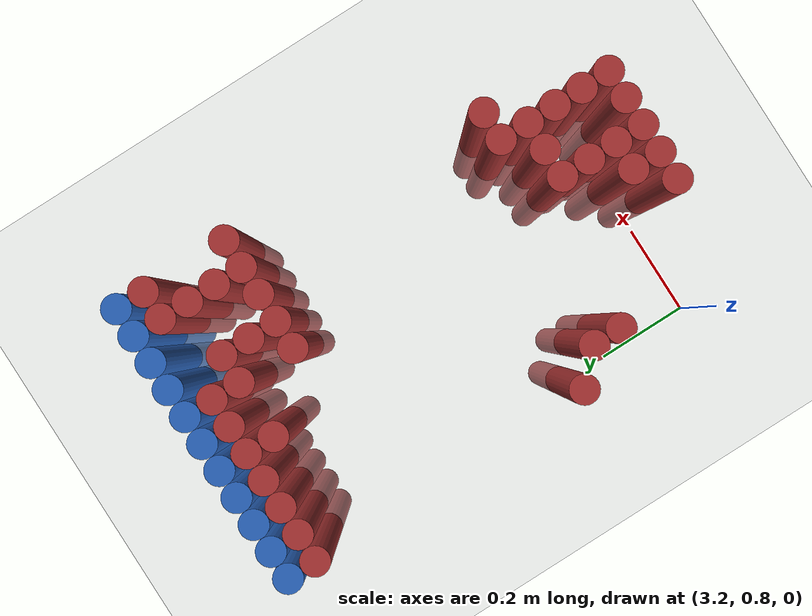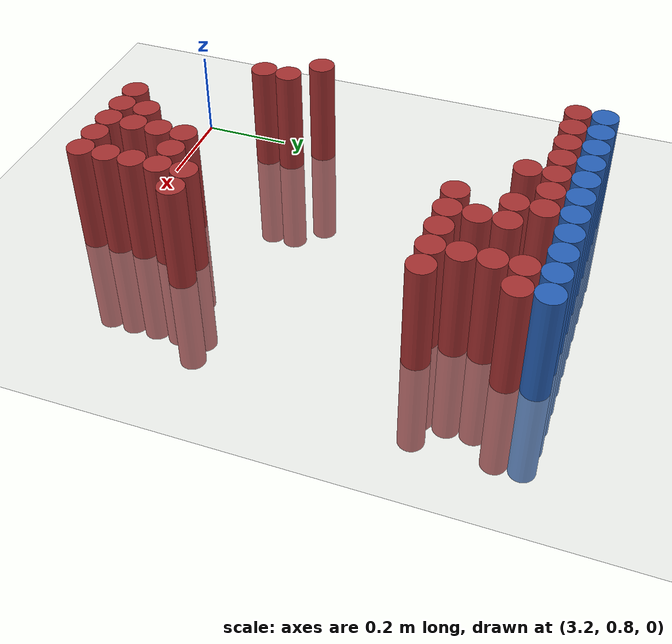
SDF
<sdf version="1.6">
 <world name="default">
  <model name="ground_plane">
   <static>1</static>
   <link name="link">
    <collision name="collision">
     <geometry><plane><normal>0 0 1</normal><size>100 100</size></plane></geometry>
     <surface><friction><ode><mu>100</mu><mu2>50</mu2></ode></friction></surface>
    </collision>
    <visual name="visual">
     <cast_shadows>0</cast_shadows>
     <geometry><plane><normal>0 0 1</normal><size>100 100</size></plane></geometry>
     <material>
      <script><uri>file://media/materials/scripts/gazebo.material</uri><name>Gazebo/Grey</name></script>
     </material>
    </visual>
   </link>
  </model>
  <model name="unit_cylinder_114">
   <static>1</static>
   <pose>3.210000 1.770000 0.000000 0.000000 0.000000 0.000000</pose>
   <link name="link">
    <inertial>
     <mass>1</mass>
     <inertia><ixx>0.145833</ixx><ixy>0</ixy><ixz>0</ixz><iyy>0.145833</iyy><iyz>0</iyz><izz>0.125</izz></inertia>
    </inertial>
    <collision name="collision">
     <geometry><cylinder><radius>0.030000</radius><length>0.5</length></cylinder></geometry>
    </collision>
    <visual name="visual">
     <geometry><cylinder><radius>0.030000</radius><length>0.5</length></cylinder></geometry>
     <material>
      <ambient>0.152000 0.379000 0.720000 1</ambient>
      <diffuse>0.152000 0.379000 0.720000 1</diffuse>
     </material>
     <material>
      <script><name>Gazebo/Grey</name><uri>file://media/materials/scripts/gazebo.material</uri></script>
     </material>
    </visual>
   </link>
  </model>
  <model name="unit_cylinder_115">
   <static>1</static>
   <pose>3.270000 1.770000 0.000000 0.000000 0.000000 0.000000</pose>
   <link name="link">
    <inertial>
     <mass>1</mass>
     <inertia><ixx>0.145833</ixx><ixy>0</ixy><ixz>0</ixz><iyy>0.145833</iyy><iyz>0</iyz><izz>0.125</izz></inertia>
    </inertial>
    <collision name="collision">
     <geometry><cylinder><radius>0.030000</radius><length>0.5</length></cylinder></geometry>
    </collision>
    <visual name="visual">
     <geometry><cylinder><radius>0.030000</radius><length>0.5</length></cylinder></geometry>
     <material>
      <ambient>0.152000 0.379000 0.720000 1</ambient>
      <diffuse>0.152000 0.379000 0.720000 1</diffuse>
     </material>
     <material>
      <script><name>Gazebo/Grey</name><uri>file://media/materials/scripts/gazebo.material</uri></script>
     </material>
    </visual>
   </link>
  </model>
  <model name="unit_cylinder_116">
   <static>1</static>
   <pose>3.330000 1.770000 0.000000 0.000000 0.000000 0.000000</pose>
   <link name="link">
    <inertial>
     <mass>1</mass>
     <inertia><ixx>0.145833</ixx><ixy>0</ixy><ixz>0</ixz><iyy>0.145833</iyy><iyz>0</iyz><izz>0.125</izz></inertia>
    </inertial>
    <collision name="collision">
     <geometry><cylinder><radius>0.030000</radius><length>0.5</length></cylinder></geometry>
    </collision>
    <visual name="visual">
     <geometry><cylinder><radius>0.030000</radius><length>0.5</length></cylinder></geometry>
     <material>
      <ambient>0.152000 0.379000 0.720000 1</ambient>
      <diffuse>0.152000 0.379000 0.720000 1</diffuse>
     </material>
     <material>
      <script><name>Gazebo/Grey</name><uri>file://media/materials/scripts/gazebo.material</uri></script>
     </material>
    </visual>
   </link>
  </model>
  <model name="unit_cylinder_117">
   <static>1</static>
   <pose>3.390000 1.770000 0.000000 0.000000 0.000000 0.000000</pose>
   <link name="link">
    <inertial>
     <mass>1</mass>
     <inertia><ixx>0.145833</ixx><ixy>0</ixy><ixz>0</ixz><iyy>0.145833</iyy><iyz>0</iyz><izz>0.125</izz></inertia>
    </inertial>
    <collision name="collision">
     <geometry><cylinder><radius>0.030000</radius><length>0.5</length></cylinder></geometry>
    </collision>
    <visual name="visual">
     <geometry><cylinder><radius>0.030000</radius><length>0.5</length></cylinder></geometry>
     <material>
      <ambient>0.152000 0.379000 0.720000 1</ambient>
      <diffuse>0.152000 0.379000 0.720000 1</diffuse>
     </material>
     <material>
      <script><name>Gazebo/Grey</name><uri>file://media/materials/scripts/gazebo.material</uri></script>
     </material>
    </visual>
   </link>
  </model>
  <model name="unit_cylinder_118">
   <static>1</static>
   <pose>3.450000 1.770000 0.000000 0.000000 0.000000 0.000000</pose>
   <link name="link">
    <inertial>
     <mass>1</mass>
     <inertia><ixx>0.145833</ixx><ixy>0</ixy><ixz>0</ixz><iyy>0.145833</iyy><iyz>0</iyz><izz>0.125</izz></inertia>
    </inertial>
    <collision name="collision">
     <geometry><cylinder><radius>0.030000</radius><length>0.5</length></cylinder></geometry>
    </collision>
    <visual name="visual">
     <geometry><cylinder><radius>0.030000</radius><length>0.5</length></cylinder></geometry>
     <material>
      <ambient>0.152000 0.379000 0.720000 1</ambient>
      <diffuse>0.152000 0.379000 0.720000 1</diffuse>
     </material>
     <material>
      <script><name>Gazebo/Grey</name><uri>file://media/materials/scripts/gazebo.material</uri></script>
     </material>
    </visual>
   </link>
  </model>
  <model name="unit_cylinder_119">
   <static>1</static>
   <pose>3.510000 1.770000 0.000000 0.000000 0.000000 0.000000</pose>
   <link name="link">
    <inertial>
     <mass>1</mass>
     <inertia><ixx>0.145833</ixx><ixy>0</ixy><ixz>0</ixz><iyy>0.145833</iyy><iyz>0</iyz><izz>0.125</izz></inertia>
    </inertial>
    <collision name="collision">
     <geometry><cylinder><radius>0.030000</radius><length>0.5</length></cylinder></geometry>
    </collision>
    <visual name="visual">
     <geometry><cylinder><radius>0.030000</radius><length>0.5</length></cylinder></geometry>
     <material>
      <ambient>0.152000 0.379000 0.720000 1</ambient>
      <diffuse>0.152000 0.379000 0.720000 1</diffuse>
     </material>
     <material>
      <script><name>Gazebo/Grey</name><uri>file://media/materials/scripts/gazebo.material</uri></script>
     </material>
    </visual>
   </link>
  </model>
  <model name="unit_cylinder_120">
   <static>1</static>
   <pose>3.570000 1.770000 0.000000 0.000000 0.000000 0.000000</pose>
   <link name="link">
    <inertial>
     <mass>1</mass>
     <inertia><ixx>0.145833</ixx><ixy>0</ixy><ixz>0</ixz><iyy>0.145833</iyy><iyz>0</iyz><izz>0.125</izz></inertia>
    </inertial>
    <collision name="collision">
     <geometry><cylinder><radius>0.030000</radius><length>0.5</length></cylinder></geometry>
    </collision>
    <visual name="visual">
     <geometry><cylinder><radius>0.030000</radius><length>0.5</length></cylinder></geometry>
     <material>
      <ambient>0.152000 0.379000 0.720000 1</ambient>
      <diffuse>0.152000 0.379000 0.720000 1</diffuse>
     </material>
     <material>
      <script><name>Gazebo/Grey</name><uri>file://media/materials/scripts/gazebo.material</uri></script>
     </material>
    </visual>
   </link>
  </model>
  <model name="unit_cylinder_121">
   <static>1</static>
   <pose>3.630000 1.770000 0.000000 0.000000 0.000000 0.000000</pose>
   <link name="link">
    <inertial>
     <mass>1</mass>
     <inertia><ixx>0.145833</ixx><ixy>0</ixy><ixz>0</ixz><iyy>0.145833</iyy><iyz>0</iyz><izz>0.125</izz></inertia>
    </inertial>
    <collision name="collision">
     <geometry><cylinder><radius>0.030000</radius><length>0.5</length></cylinder></geometry>
    </collision>
    <visual name="visual">
     <geometry><cylinder><radius>0.030000</radius><length>0.5</length></cylinder></geometry>
     <material>
      <ambient>0.152000 0.379000 0.720000 1</ambient>
      <diffuse>0.152000 0.379000 0.720000 1</diffuse>
     </material>
     <material>
      <script><name>Gazebo/Grey</name><uri>file://media/materials/scripts/gazebo.material</uri></script>
     </material>
    </visual>
   </link>
  </model>
  <model name="unit_cylinder_122">
   <static>1</static>
   <pose>3.690000 1.770000 0.000000 0.000000 0.000000 0.000000</pose>
   <link name="link">
    <inertial>
     <mass>1</mass>
     <inertia><ixx>0.145833</ixx><ixy>0</ixy><ixz>0</ixz><iyy>0.145833</iyy><iyz>0</iyz><izz>0.125</izz></inertia>
    </inertial>
    <collision name="collision">
     <geometry><cylinder><radius>0.030000</radius><length>0.5</length></cylinder></geometry>
    </collision>
    <visual name="visual">
     <geometry><cylinder><radius>0.030000</radius><length>0.5</length></cylinder></geometry>
     <material>
      <ambient>0.152000 0.379000 0.720000 1</ambient>
      <diffuse>0.152000 0.379000 0.720000 1</diffuse>
     </material>
     <material>
      <script><name>Gazebo/Grey</name><uri>file://media/materials/scripts/gazebo.material</uri></script>
     </material>
    </visual>
   </link>
  </model>
  <model name="unit_cylinder_123">
   <static>1</static>
   <pose>3.750000 1.770000 0.000000 0.000000 0.000000 0.000000</pose>
   <link name="link">
    <inertial>
     <mass>1</mass>
     <inertia><ixx>0.145833</ixx><ixy>0</ixy><ixz>0</ixz><iyy>0.145833</iyy><iyz>0</iyz><izz>0.125</izz></inertia>
    </inertial>
    <collision name="collision">
     <geometry><cylinder><radius>0.030000</radius><length>0.5</length></cylinder></geometry>
    </collision>
    <visual name="visual">
     <geometry><cylinder><radius>0.030000</radius><length>0.5</length></cylinder></geometry>
     <material>
      <ambient>0.152000 0.379000 0.720000 1</ambient>
      <diffuse>0.152000 0.379000 0.720000 1</diffuse>
     </material>
     <material>
      <script><name>Gazebo/Grey</name><uri>file://media/materials/scripts/gazebo.material</uri></script>
     </material>
    </visual>
   </link>
  </model>
  <model name="unit_cylinder_124">
   <static>1</static>
   <pose>3.810000 1.770000 0.000000 0.000000 0.000000 0.000000</pose>
   <link name="link">
    <inertial>
     <mass>1</mass>
     <inertia><ixx>0.145833</ixx><ixy>0</ixy><ixz>0</ixz><iyy>0.145833</iyy><iyz>0</iyz><izz>0.125</izz></inertia>
    </inertial>
    <collision name="collision">
     <geometry><cylinder><radius>0.030000</radius><length>0.5</length></cylinder></geometry>
    </collision>
    <visual name="visual">
     <geometry><cylinder><radius>0.030000</radius><length>0.5</length></cylinder></geometry>
     <material>
      <ambient>0.152000 0.379000 0.720000 1</ambient>
      <diffuse>0.152000 0.379000 0.720000 1</diffuse>
     </material>
     <material>
      <script><name>Gazebo/Grey</name><uri>file://media/materials/scripts/gazebo.material</uri></script>
     </material>
    </visual>
   </link>
  </model>
  <model name="unit_cylinder_134">
   <static>1</static>
   <pose>3.210000 1.710000 0.000000 0.000000 0.000000 0.000000</pose>
   <link name="link">
    <inertial>
     <mass>1</mass>
     <inertia><ixx>0.145833</ixx><ixy>0</ixy><ixz>0</ixz><iyy>0.145833</iyy><iyz>0</iyz><izz>0.125</izz></inertia>
    </inertial>
    <collision name="collision">
     <geometry><cylinder><radius>0.030000</radius><length>0.5</length></cylinder></geometry>
    </collision>
    <visual name="visual">
     <geometry><cylinder><radius>0.030000</radius><length>0.5</length></cylinder></geometry>
     <material>
      <ambient>0.648000 0.192000 0.192000 1</ambient>
      <diffuse>0.648000 0.192000 0.192000 1</diffuse>
     </material>
     <material>
      <script><name>Gazebo/Grey</name><uri>file://media/materials/scripts/gazebo.material</uri></script>
     </material>
    </visual>
   </link>
  </model>
  <model name="unit_cylinder_135">
   <static>1</static>
   <pose>3.270000 1.710000 0.000000 0.000000 0.000000 0.000000</pose>
   <link name="link">
    <inertial>
     <mass>1</mass>
     <inertia><ixx>0.145833</ixx><ixy>0</ixy><ixz>0</ixz><iyy>0.145833</iyy><iyz>0</iyz><izz>0.125</izz></inertia>
    </inertial>
    <collision name="collision">
     <geometry><cylinder><radius>0.030000</radius><length>0.5</length></cylinder></geometry>
    </collision>
    <visual name="visual">
     <geometry><cylinder><radius>0.030000</radius><length>0.5</length></cylinder></geometry>
     <material>
      <ambient>0.648000 0.192000 0.192000 1</ambient>
      <diffuse>0.648000 0.192000 0.192000 1</diffuse>
     </material>
     <material>
      <script><name>Gazebo/Grey</name><uri>file://media/materials/scripts/gazebo.material</uri></script>
     </material>
    </visual>
   </link>
  </model>
  <model name="unit_cylinder_136">
   <static>1</static>
   <pose>3.330000 1.710000 0.000000 0.000000 0.000000 0.000000</pose>
   <link name="link">
    <inertial>
     <mass>1</mass>
     <inertia><ixx>0.145833</ixx><ixy>0</ixy><ixz>0</ixz><iyy>0.145833</iyy><iyz>0</iyz><izz>0.125</izz></inertia>
    </inertial>
    <collision name="collision">
     <geometry><cylinder><radius>0.030000</radius><length>0.5</length></cylinder></geometry>
    </collision>
    <visual name="visual">
     <geometry><cylinder><radius>0.030000</radius><length>0.5</length></cylinder></geometry>
     <material>
      <ambient>0.648000 0.192000 0.192000 1</ambient>
      <diffuse>0.648000 0.192000 0.192000 1</diffuse>
     </material>
     <material>
      <script><name>Gazebo/Grey</name><uri>file://media/materials/scripts/gazebo.material</uri></script>
     </material>
    </visual>
   </link>
  </model>
  <model name="unit_cylinder_137">
   <static>1</static>
   <pose>3.390000 1.710000 0.000000 0.000000 0.000000 0.000000</pose>
   <link name="link">
    <inertial>
     <mass>1</mass>
     <inertia><ixx>0.145833</ixx><ixy>0</ixy><ixz>0</ixz><iyy>0.145833</iyy><iyz>0</iyz><izz>0.125</izz></inertia>
    </inertial>
    <collision name="collision">
     <geometry><cylinder><radius>0.030000</radius><length>0.5</length></cylinder></geometry>
    </collision>
    <visual name="visual">
     <geometry><cylinder><radius>0.030000</radius><length>0.5</length></cylinder></geometry>
     <material>
      <ambient>0.648000 0.192000 0.192000 1</ambient>
      <diffuse>0.648000 0.192000 0.192000 1</diffuse>
     </material>
     <material>
      <script><name>Gazebo/Grey</name><uri>file://media/materials/scripts/gazebo.material</uri></script>
     </material>
    </visual>
   </link>
  </model>
  <model name="unit_cylinder_138">
   <static>1</static>
   <pose>3.450000 1.710000 0.000000 0.000000 0.000000 0.000000</pose>
   <link name="link">
    <inertial>
     <mass>1</mass>
     <inertia><ixx>0.145833</ixx><ixy>0</ixy><ixz>0</ixz><iyy>0.145833</iyy><iyz>0</iyz><izz>0.125</izz></inertia>
    </inertial>
    <collision name="collision">
     <geometry><cylinder><radius>0.030000</radius><length>0.5</length></cylinder></geometry>
    </collision>
    <visual name="visual">
     <geometry><cylinder><radius>0.030000</radius><length>0.5</length></cylinder></geometry>
     <material>
      <ambient>0.648000 0.192000 0.192000 1</ambient>
      <diffuse>0.648000 0.192000 0.192000 1</diffuse>
     </material>
     <material>
      <script><name>Gazebo/Grey</name><uri>file://media/materials/scripts/gazebo.material</uri></script>
     </material>
    </visual>
   </link>
  </model>
  <model name="unit_cylinder_139">
   <static>1</static>
   <pose>3.510000 1.710000 0.000000 0.000000 0.000000 0.000000</pose>
   <link name="link">
    <inertial>
     <mass>1</mass>
     <inertia><ixx>0.145833</ixx><ixy>0</ixy><ixz>0</ixz><iyy>0.145833</iyy><iyz>0</iyz><izz>0.125</izz></inertia>
    </inertial>
    <collision name="collision">
     <geometry><cylinder><radius>0.030000</radius><length>0.5</length></cylinder></geometry>
    </collision>
    <visual name="visual">
     <geometry><cylinder><radius>0.030000</radius><length>0.5</length></cylinder></geometry>
     <material>
      <ambient>0.648000 0.192000 0.192000 1</ambient>
      <diffuse>0.648000 0.192000 0.192000 1</diffuse>
     </material>
     <material>
      <script><name>Gazebo/Grey</name><uri>file://media/materials/scripts/gazebo.material</uri></script>
     </material>
    </visual>
   </link>
  </model>
  <model name="unit_cylinder_140">
   <static>1</static>
   <pose>3.570000 1.710000 0.000000 0.000000 0.000000 0.000000</pose>
   <link name="link">
    <inertial>
     <mass>1</mass>
     <inertia><ixx>0.145833</ixx><ixy>0</ixy><ixz>0</ixz><iyy>0.145833</iyy><iyz>0</iyz><izz>0.125</izz></inertia>
    </inertial>
    <collision name="collision">
     <geometry><cylinder><radius>0.030000</radius><length>0.5</length></cylinder></geometry>
    </collision>
    <visual name="visual">
     <geometry><cylinder><radius>0.030000</radius><length>0.5</length></cylinder></geometry>
     <material>
      <ambient>0.648000 0.192000 0.192000 1</ambient>
      <diffuse>0.648000 0.192000 0.192000 1</diffuse>
     </material>
     <material>
      <script><name>Gazebo/Grey</name><uri>file://media/materials/scripts/gazebo.material</uri></script>
     </material>
    </visual>
   </link>
  </model>
  <model name="unit_cylinder_141">
   <static>1</static>
   <pose>3.750000 1.710000 0.000000 0.000000 0.000000 0.000000</pose>
   <link name="link">
    <inertial>
     <mass>1</mass>
     <inertia><ixx>0.145833</ixx><ixy>0</ixy><ixz>0</ixz><iyy>0.145833</iyy><iyz>0</iyz><izz>0.125</izz></inertia>
    </inertial>
    <collision name="collision">
     <geometry><cylinder><radius>0.030000</radius><length>0.5</length></cylinder></geometry>
    </collision>
    <visual name="visual">
     <geometry><cylinder><radius>0.030000</radius><length>0.5</length></cylinder></geometry>
     <material>
      <ambient>0.648000 0.192000 0.192000 1</ambient>
      <diffuse>0.648000 0.192000 0.192000 1</diffuse>
     </material>
     <material>
      <script><name>Gazebo/Grey</name><uri>file://media/materials/scripts/gazebo.material</uri></script>
     </material>
    </visual>
   </link>
  </model>
  <model name="unit_cylinder_142">
   <static>1</static>
   <pose>3.810000 1.710000 0.000000 0.000000 0.000000 0.000000</pose>
   <link name="link">
    <inertial>
     <mass>1</mass>
     <inertia><ixx>0.145833</ixx><ixy>0</ixy><ixz>0</ixz><iyy>0.145833</iyy><iyz>0</iyz><izz>0.125</izz></inertia>
    </inertial>
    <collision name="collision">
     <geometry><cylinder><radius>0.030000</radius><length>0.5</length></cylinder></geometry>
    </collision>
    <visual name="visual">
     <geometry><cylinder><radius>0.030000</radius><length>0.5</length></cylinder></geometry>
     <material>
      <ambient>0.648000 0.192000 0.192000 1</ambient>
      <diffuse>0.648000 0.192000 0.192000 1</diffuse>
     </material>
     <material>
      <script><name>Gazebo/Grey</name><uri>file://media/materials/scripts/gazebo.material</uri></script>
     </material>
    </visual>
   </link>
  </model>
  <model name="unit_cylinder_150">
   <static>1</static>
   <pose>3.450000 1.650000 0.000000 0.000000 0.000000 0.000000</pose>
   <link name="link">
    <inertial>
     <mass>1</mass>
     <inertia><ixx>0.145833</ixx><ixy>0</ixy><ixz>0</ixz><iyy>0.145833</iyy><iyz>0</iyz><izz>0.125</izz></inertia>
    </inertial>
    <collision name="collision">
     <geometry><cylinder><radius>0.030000</radius><length>0.5</length></cylinder></geometry>
    </collision>
    <visual name="visual">
     <geometry><cylinder><radius>0.030000</radius><length>0.5</length></cylinder></geometry>
     <material>
      <ambient>0.648000 0.192000 0.192000 1</ambient>
      <diffuse>0.648000 0.192000 0.192000 1</diffuse>
     </material>
     <material>
      <script><name>Gazebo/Grey</name><uri>file://media/materials/scripts/gazebo.material</uri></script>
     </material>
    </visual>
   </link>
  </model>
  <model name="unit_cylinder_151">
   <static>1</static>
   <pose>3.570000 1.650000 0.000000 0.000000 0.000000 0.000000</pose>
   <link name="link">
    <inertial>
     <mass>1</mass>
     <inertia><ixx>0.145833</ixx><ixy>0</ixy><ixz>0</ixz><iyy>0.145833</iyy><iyz>0</iyz><izz>0.125</izz></inertia>
    </inertial>
    <collision name="collision">
     <geometry><cylinder><radius>0.030000</radius><length>0.5</length></cylinder></geometry>
    </collision>
    <visual name="visual">
     <geometry><cylinder><radius>0.030000</radius><length>0.5</length></cylinder></geometry>
     <material>
      <ambient>0.648000 0.192000 0.192000 1</ambient>
      <diffuse>0.648000 0.192000 0.192000 1</diffuse>
     </material>
     <material>
      <script><name>Gazebo/Grey</name><uri>file://media/materials/scripts/gazebo.material</uri></script>
     </material>
    </visual>
   </link>
  </model>
  <model name="unit_cylinder_152">
   <static>1</static>
   <pose>3.630000 1.650000 0.000000 0.000000 0.000000 0.000000</pose>
   <link name="link">
    <inertial>
     <mass>1</mass>
     <inertia><ixx>0.145833</ixx><ixy>0</ixy><ixz>0</ixz><iyy>0.145833</iyy><iyz>0</iyz><izz>0.125</izz></inertia>
    </inertial>
    <collision name="collision">
     <geometry><cylinder><radius>0.030000</radius><length>0.5</length></cylinder></geometry>
    </collision>
    <visual name="visual">
     <geometry><cylinder><radius>0.030000</radius><length>0.5</length></cylinder></geometry>
     <material>
      <ambient>0.648000 0.192000 0.192000 1</ambient>
      <diffuse>0.648000 0.192000 0.192000 1</diffuse>
     </material>
     <material>
      <script><name>Gazebo/Grey</name><uri>file://media/materials/scripts/gazebo.material</uri></script>
     </material>
    </visual>
   </link>
  </model>
  <model name="unit_cylinder_153">
   <static>1</static>
   <pose>3.750000 1.650000 0.000000 0.000000 0.000000 0.000000</pose>
   <link name="link">
    <inertial>
     <mass>1</mass>
     <inertia><ixx>0.145833</ixx><ixy>0</ixy><ixz>0</ixz><iyy>0.145833</iyy><iyz>0</iyz><izz>0.125</izz></inertia>
    </inertial>
    <collision name="collision">
     <geometry><cylinder><radius>0.030000</radius><length>0.5</length></cylinder></geometry>
    </collision>
    <visual name="visual">
     <geometry><cylinder><radius>0.030000</radius><length>0.5</length></cylinder></geometry>
     <material>
      <ambient>0.648000 0.192000 0.192000 1</ambient>
      <diffuse>0.648000 0.192000 0.192000 1</diffuse>
     </material>
     <material>
      <script><name>Gazebo/Grey</name><uri>file://media/materials/scripts/gazebo.material</uri></script>
     </material>
    </visual>
   </link>
  </model>
  <model name="unit_cylinder_157">
   <static>1</static>
   <pose>3.630000 1.590000 0.000000 0.000000 0.000000 0.000000</pose>
   <link name="link">
    <inertial>
     <mass>1</mass>
     <inertia><ixx>0.145833</ixx><ixy>0</ixy><ixz>0</ixz><iyy>0.145833</iyy><iyz>0</iyz><izz>0.125</izz></inertia>
    </inertial>
    <collision name="collision">
     <geometry><cylinder><radius>0.030000</radius><length>0.5</length></cylinder></geometry>
    </collision>
    <visual name="visual">
     <geometry><cylinder><radius>0.030000</radius><length>0.5</length></cylinder></geometry>
     <material>
      <ambient>0.648000 0.192000 0.192000 1</ambient>
      <diffuse>0.648000 0.192000 0.192000 1</diffuse>
     </material>
     <material>
      <script><name>Gazebo/Grey</name><uri>file://media/materials/scripts/gazebo.material</uri></script>
     </material>
    </visual>
   </link>
  </model>
  <model name="unit_cylinder_158">
   <static>1</static>
   <pose>3.750000 1.590000 0.000000 0.000000 0.000000 0.000000</pose>
   <link name="link">
    <inertial>
     <mass>1</mass>
     <inertia><ixx>0.145833</ixx><ixy>0</ixy><ixz>0</ixz><iyy>0.145833</iyy><iyz>0</iyz><izz>0.125</izz></inertia>
    </inertial>
    <collision name="collision">
     <geometry><cylinder><radius>0.030000</radius><length>0.5</length></cylinder></geometry>
    </collision>
    <visual name="visual">
     <geometry><cylinder><radius>0.030000</radius><length>0.5</length></cylinder></geometry>
     <material>
      <ambient>0.648000 0.192000 0.192000 1</ambient>
      <diffuse>0.648000 0.192000 0.192000 1</diffuse>
     </material>
     <material>
      <script><name>Gazebo/Grey</name><uri>file://media/materials/scripts/gazebo.material</uri></script>
     </material>
    </visual>
   </link>
  </model>
  <model name="unit_cylinder_162">
   <static>1</static>
   <pose>3.570000 1.530000 0.000000 0.000000 0.000000 0.000000</pose>
   <link name="link">
    <inertial>
     <mass>1</mass>
     <inertia><ixx>0.145833</ixx><ixy>0</ixy><ixz>0</ixz><iyy>0.145833</iyy><iyz>0</iyz><izz>0.125</izz></inertia>
    </inertial>
    <collision name="collision">
     <geometry><cylinder><radius>0.030000</radius><length>0.5</length></cylinder></geometry>
    </collision>
    <visual name="visual">
     <geometry><cylinder><radius>0.030000</radius><length>0.5</length></cylinder></geometry>
     <material>
      <ambient>0.648000 0.192000 0.192000 1</ambient>
      <diffuse>0.648000 0.192000 0.192000 1</diffuse>
     </material>
     <material>
      <script><name>Gazebo/Grey</name><uri>file://media/materials/scripts/gazebo.material</uri></script>
     </material>
    </visual>
   </link>
  </model>
  <model name="unit_cylinder_163">
   <static>1</static>
   <pose>3.630000 1.530000 0.000000 0.000000 0.000000 0.000000</pose>
   <link name="link">
    <inertial>
     <mass>1</mass>
     <inertia><ixx>0.145833</ixx><ixy>0</ixy><ixz>0</ixz><iyy>0.145833</iyy><iyz>0</iyz><izz>0.125</izz></inertia>
    </inertial>
    <collision name="collision">
     <geometry><cylinder><radius>0.030000</radius><length>0.5</length></cylinder></geometry>
    </collision>
    <visual name="visual">
     <geometry><cylinder><radius>0.030000</radius><length>0.5</length></cylinder></geometry>
     <material>
      <ambient>0.648000 0.192000 0.192000 1</ambient>
      <diffuse>0.648000 0.192000 0.192000 1</diffuse>
     </material>
     <material>
      <script><name>Gazebo/Grey</name><uri>file://media/materials/scripts/gazebo.material</uri></script>
     </material>
    </visual>
   </link>
  </model>
  <model name="unit_cylinder_164">
   <static>1</static>
   <pose>3.690000 1.530000 0.000000 0.000000 0.000000 0.000000</pose>
   <link name="link">
    <inertial>
     <mass>1</mass>
     <inertia><ixx>0.145833</ixx><ixy>0</ixy><ixz>0</ixz><iyy>0.145833</iyy><iyz>0</iyz><izz>0.125</izz></inertia>
    </inertial>
    <collision name="collision">
     <geometry><cylinder><radius>0.030000</radius><length>0.5</length></cylinder></geometry>
    </collision>
    <visual name="visual">
     <geometry><cylinder><radius>0.030000</radius><length>0.5</length></cylinder></geometry>
     <material>
      <ambient>0.648000 0.192000 0.192000 1</ambient>
      <diffuse>0.648000 0.192000 0.192000 1</diffuse>
     </material>
     <material>
      <script><name>Gazebo/Grey</name><uri>file://media/materials/scripts/gazebo.material</uri></script>
     </material>
    </visual>
   </link>
  </model>
  <model name="unit_cylinder_165">
   <static>1</static>
   <pose>3.750000 1.530000 0.000000 0.000000 0.000000 0.000000</pose>
   <link name="link">
    <inertial>
     <mass>1</mass>
     <inertia><ixx>0.145833</ixx><ixy>0</ixy><ixz>0</ixz><iyy>0.145833</iyy><iyz>0</iyz><izz>0.125</izz></inertia>
    </inertial>
    <collision name="collision">
     <geometry><cylinder><radius>0.030000</radius><length>0.5</length></cylinder></geometry>
    </collision>
    <visual name="visual">
     <geometry><cylinder><radius>0.030000</radius><length>0.5</length></cylinder></geometry>
     <material>
      <ambient>0.648000 0.192000 0.192000 1</ambient>
      <diffuse>0.648000 0.192000 0.192000 1</diffuse>
     </material>
     <material>
      <script><name>Gazebo/Grey</name><uri>file://media/materials/scripts/gazebo.material</uri></script>
     </material>
    </visual>
   </link>
  </model>
  <model name="unit_cylinder_166">
   <static>1</static>
   <pose>3.810000 1.530000 0.000000 0.000000 0.000000 0.000000</pose>
   <link name="link">
    <inertial>
     <mass>1</mass>
     <inertia><ixx>0.145833</ixx><ixy>0</ixy><ixz>0</ixz><iyy>0.145833</iyy><iyz>0</iyz><izz>0.125</izz></inertia>
    </inertial>
    <collision name="collision">
     <geometry><cylinder><radius>0.030000</radius><length>0.5</length></cylinder></geometry>
    </collision>
    <visual name="visual">
     <geometry><cylinder><radius>0.030000</radius><length>0.5</length></cylinder></geometry>
     <material>
      <ambient>0.648000 0.192000 0.192000 1</ambient>
      <diffuse>0.648000 0.192000 0.192000 1</diffuse>
     </material>
     <material>
      <script><name>Gazebo/Grey</name><uri>file://media/materials/scripts/gazebo.material</uri></script>
     </material>
    </visual>
   </link>
  </model>
  <model name="unit_cylinder_186">
   <static>1</static>
   <pose>3.210000 1.110000 0.000000 0.000000 0.000000 0.000000</pose>
   <link name="link">
    <inertial>
     <mass>1</mass>
     <inertia><ixx>0.145833</ixx><ixy>0</ixy><ixz>0</ixz><iyy>0.145833</iyy><iyz>0</iyz><izz>0.125</izz></inertia>
    </inertial>
    <collision name="collision">
     <geometry><cylinder><radius>0.030000</radius><length>0.5</length></cylinder></geometry>
    </collision>
    <visual name="visual">
     <geometry><cylinder><radius>0.030000</radius><length>0.5</length></cylinder></geometry>
     <material>
      <ambient>0.648000 0.192000 0.192000 1</ambient>
      <diffuse>0.648000 0.192000 0.192000 1</diffuse>
     </material>
     <material>
      <script><name>Gazebo/Grey</name><uri>file://media/materials/scripts/gazebo.material</uri></script>
     </material>
    </visual>
   </link>
  </model>
  <model name="unit_cylinder_189">
   <static>1</static>
   <pose>3.270000 1.050000 0.000000 0.000000 0.000000 0.000000</pose>
   <link name="link">
    <inertial>
     <mass>1</mass>
     <inertia><ixx>0.145833</ixx><ixy>0</ixy><ixz>0</ixz><iyy>0.145833</iyy><iyz>0</iyz><izz>0.125</izz></inertia>
    </inertial>
    <collision name="collision">
     <geometry><cylinder><radius>0.030000</radius><length>0.5</length></cylinder></geometry>
    </collision>
    <visual name="visual">
     <geometry><cylinder><radius>0.030000</radius><length>0.5</length></cylinder></geometry>
     <material>
      <ambient>0.648000 0.192000 0.192000 1</ambient>
      <diffuse>0.648000 0.192000 0.192000 1</diffuse>
     </material>
     <material>
      <script><name>Gazebo/Grey</name><uri>file://media/materials/scripts/gazebo.material</uri></script>
     </material>
    </visual>
   </link>
  </model>
  <model name="unit_cylinder_192">
   <static>1</static>
   <pose>3.270000 0.990000 0.000000 0.000000 0.000000 0.000000</pose>
   <link name="link">
    <inertial>
     <mass>1</mass>
     <inertia><ixx>0.145833</ixx><ixy>0</ixy><ixz>0</ixz><iyy>0.145833</iyy><iyz>0</iyz><izz>0.125</izz></inertia>
    </inertial>
    <collision name="collision">
     <geometry><cylinder><radius>0.030000</radius><length>0.5</length></cylinder></geometry>
    </collision>
    <visual name="visual">
     <geometry><cylinder><radius>0.030000</radius><length>0.5</length></cylinder></geometry>
     <material>
      <ambient>0.648000 0.192000 0.192000 1</ambient>
      <diffuse>0.648000 0.192000 0.192000 1</diffuse>
     </material>
     <material>
      <script><name>Gazebo/Grey</name><uri>file://media/materials/scripts/gazebo.material</uri></script>
     </material>
    </visual>
   </link>
  </model>
  <model name="unit_cylinder_193">
   <static>1</static>
   <pose>3.690000 0.990000 0.000000 0.000000 0.000000 0.000000</pose>
   <link name="link">
    <inertial>
     <mass>1</mass>
     <inertia><ixx>0.145833</ixx><ixy>0</ixy><ixz>0</ixz><iyy>0.145833</iyy><iyz>0</iyz><izz>0.125</izz></inertia>
    </inertial>
    <collision name="collision">
     <geometry><cylinder><radius>0.030000</radius><length>0.5</length></cylinder></geometry>
    </collision>
    <visual name="visual">
     <geometry><cylinder><radius>0.030000</radius><length>0.5</length></cylinder></geometry>
     <material>
      <ambient>0.648000 0.192000 0.192000 1</ambient>
      <diffuse>0.648000 0.192000 0.192000 1</diffuse>
     </material>
     <material>
      <script><name>Gazebo/Grey</name><uri>file://media/materials/scripts/gazebo.material</uri></script>
     </material>
    </visual>
   </link>
  </model>
  <model name="unit_cylinder_194">
   <static>1</static>
   <pose>3.750000 0.990000 0.000000 0.000000 0.000000 0.000000</pose>
   <link name="link">
    <inertial>
     <mass>1</mass>
     <inertia><ixx>0.145833</ixx><ixy>0</ixy><ixz>0</ixz><iyy>0.145833</iyy><iyz>0</iyz><izz>0.125</izz></inertia>
    </inertial>
    <collision name="collision">
     <geometry><cylinder><radius>0.030000</radius><length>0.5</length></cylinder></geometry>
    </collision>
    <visual name="visual">
     <geometry><cylinder><radius>0.030000</radius><length>0.5</length></cylinder></geometry>
     <material>
      <ambient>0.648000 0.192000 0.192000 1</ambient>
      <diffuse>0.648000 0.192000 0.192000 1</diffuse>
     </material>
     <material>
      <script><name>Gazebo/Grey</name><uri>file://media/materials/scripts/gazebo.material</uri></script>
     </material>
    </visual>
   </link>
  </model>
  <model name="unit_cylinder_198">
   <static>1</static>
   <pose>3.570000 0.930000 0.000000 0.000000 0.000000 0.000000</pose>
   <link name="link">
    <inertial>
     <mass>1</mass>
     <inertia><ixx>0.145833</ixx><ixy>0</ixy><ixz>0</ixz><iyy>0.145833</iyy><iyz>0</iyz><izz>0.125</izz></inertia>
    </inertial>
    <collision name="collision">
     <geometry><cylinder><radius>0.030000</radius><length>0.5</length></cylinder></geometry>
    </collision>
    <visual name="visual">
     <geometry><cylinder><radius>0.030000</radius><length>0.5</length></cylinder></geometry>
     <material>
      <ambient>0.648000 0.192000 0.192000 1</ambient>
      <diffuse>0.648000 0.192000 0.192000 1</diffuse>
     </material>
     <material>
      <script><name>Gazebo/Grey</name><uri>file://media/materials/scripts/gazebo.material</uri></script>
     </material>
    </visual>
   </link>
  </model>
  <model name="unit_cylinder_199">
   <static>1</static>
   <pose>3.630000 0.930000 0.000000 0.000000 0.000000 0.000000</pose>
   <link name="link">
    <inertial>
     <mass>1</mass>
     <inertia><ixx>0.145833</ixx><ixy>0</ixy><ixz>0</ixz><iyy>0.145833</iyy><iyz>0</iyz><izz>0.125</izz></inertia>
    </inertial>
    <collision name="collision">
     <geometry><cylinder><radius>0.030000</radius><length>0.5</length></cylinder></geometry>
    </collision>
    <visual name="visual">
     <geometry><cylinder><radius>0.030000</radius><length>0.5</length></cylinder></geometry>
     <material>
      <ambient>0.648000 0.192000 0.192000 1</ambient>
      <diffuse>0.648000 0.192000 0.192000 1</diffuse>
     </material>
     <material>
      <script><name>Gazebo/Grey</name><uri>file://media/materials/scripts/gazebo.material</uri></script>
     </material>
    </visual>
   </link>
  </model>
  <model name="unit_cylinder_200">
   <static>1</static>
   <pose>3.690000 0.930000 0.000000 0.000000 0.000000 0.000000</pose>
   <link name="link">
    <inertial>
     <mass>1</mass>
     <inertia><ixx>0.145833</ixx><ixy>0</ixy><ixz>0</ixz><iyy>0.145833</iyy><iyz>0</iyz><izz>0.125</izz></inertia>
    </inertial>
    <collision name="collision">
     <geometry><cylinder><radius>0.030000</radius><length>0.5</length></cylinder></geometry>
    </collision>
    <visual name="visual">
     <geometry><cylinder><radius>0.030000</radius><length>0.5</length></cylinder></geometry>
     <material>
      <ambient>0.648000 0.192000 0.192000 1</ambient>
      <diffuse>0.648000 0.192000 0.192000 1</diffuse>
     </material>
     <material>
      <script><name>Gazebo/Grey</name><uri>file://media/materials/scripts/gazebo.material</uri></script>
     </material>
    </visual>
   </link>
  </model>
  <model name="unit_cylinder_203">
   <static>1</static>
   <pose>3.570000 0.870000 0.000000 0.000000 0.000000 0.000000</pose>
   <link name="link">
    <inertial>
     <mass>1</mass>
     <inertia><ixx>0.145833</ixx><ixy>0</ixy><ixz>0</ixz><iyy>0.145833</iyy><iyz>0</iyz><izz>0.125</izz></inertia>
    </inertial>
    <collision name="collision">
     <geometry><cylinder><radius>0.030000</radius><length>0.5</length></cylinder></geometry>
    </collision>
    <visual name="visual">
     <geometry><cylinder><radius>0.030000</radius><length>0.5</length></cylinder></geometry>
     <material>
      <ambient>0.648000 0.192000 0.192000 1</ambient>
      <diffuse>0.648000 0.192000 0.192000 1</diffuse>
     </material>
     <material>
      <script><name>Gazebo/Grey</name><uri>file://media/materials/scripts/gazebo.material</uri></script>
     </material>
    </visual>
   </link>
  </model>
  <model name="unit_cylinder_204">
   <static>1</static>
   <pose>3.690000 0.870000 0.000000 0.000000 0.000000 0.000000</pose>
   <link name="link">
    <inertial>
     <mass>1</mass>
     <inertia><ixx>0.145833</ixx><ixy>0</ixy><ixz>0</ixz><iyy>0.145833</iyy><iyz>0</iyz><izz>0.125</izz></inertia>
    </inertial>
    <collision name="collision">
     <geometry><cylinder><radius>0.030000</radius><length>0.5</length></cylinder></geometry>
    </collision>
    <visual name="visual">
     <geometry><cylinder><radius>0.030000</radius><length>0.5</length></cylinder></geometry>
     <material>
      <ambient>0.648000 0.192000 0.192000 1</ambient>
      <diffuse>0.648000 0.192000 0.192000 1</diffuse>
     </material>
     <material>
      <script><name>Gazebo/Grey</name><uri>file://media/materials/scripts/gazebo.material</uri></script>
     </material>
    </visual>
   </link>
  </model>
  <model name="unit_cylinder_207">
   <static>1</static>
   <pose>3.510000 0.810000 0.000000 0.000000 0.000000 0.000000</pose>
   <link name="link">
    <inertial>
     <mass>1</mass>
     <inertia><ixx>0.145833</ixx><ixy>0</ixy><ixz>0</ixz><iyy>0.145833</iyy><iyz>0</iyz><izz>0.125</izz></inertia>
    </inertial>
    <collision name="collision">
     <geometry><cylinder><radius>0.030000</radius><length>0.5</length></cylinder></geometry>
    </collision>
    <visual name="visual">
     <geometry><cylinder><radius>0.030000</radius><length>0.5</length></cylinder></geometry>
     <material>
      <ambient>0.648000 0.192000 0.192000 1</ambient>
      <diffuse>0.648000 0.192000 0.192000 1</diffuse>
     </material>
     <material>
      <script><name>Gazebo/Grey</name><uri>file://media/materials/scripts/gazebo.material</uri></script>
     </material>
    </visual>
   </link>
  </model>
  <model name="unit_cylinder_208">
   <static>1</static>
   <pose>3.570000 0.810000 0.000000 0.000000 0.000000 0.000000</pose>
   <link name="link">
    <inertial>
     <mass>1</mass>
     <inertia><ixx>0.145833</ixx><ixy>0</ixy><ixz>0</ixz><iyy>0.145833</iyy><iyz>0</iyz><izz>0.125</izz></inertia>
    </inertial>
    <collision name="collision">
     <geometry><cylinder><radius>0.030000</radius><length>0.5</length></cylinder></geometry>
    </collision>
    <visual name="visual">
     <geometry><cylinder><radius>0.030000</radius><length>0.5</length></cylinder></geometry>
     <material>
      <ambient>0.648000 0.192000 0.192000 1</ambient>
      <diffuse>0.648000 0.192000 0.192000 1</diffuse>
     </material>
     <material>
      <script><name>Gazebo/Grey</name><uri>file://media/materials/scripts/gazebo.material</uri></script>
     </material>
    </visual>
   </link>
  </model>
  <model name="unit_cylinder_209">
   <static>1</static>
   <pose>3.690000 0.810000 0.000000 0.000000 0.000000 0.000000</pose>
   <link name="link">
    <inertial>
     <mass>1</mass>
     <inertia><ixx>0.145833</ixx><ixy>0</ixy><ixz>0</ixz><iyy>0.145833</iyy><iyz>0</iyz><izz>0.125</izz></inertia>
    </inertial>
    <collision name="collision">
     <geometry><cylinder><radius>0.030000</radius><length>0.5</length></cylinder></geometry>
    </collision>
    <visual name="visual">
     <geometry><cylinder><radius>0.030000</radius><length>0.5</length></cylinder></geometry>
     <material>
      <ambient>0.648000 0.192000 0.192000 1</ambient>
      <diffuse>0.648000 0.192000 0.192000 1</diffuse>
     </material>
     <material>
      <script><name>Gazebo/Grey</name><uri>file://media/materials/scripts/gazebo.material</uri></script>
     </material>
    </visual>
   </link>
  </model>
  <model name="unit_cylinder_216">
   <static>1</static>
   <pose>3.450000 0.750000 0.000000 0.000000 0.000000 0.000000</pose>
   <link name="link">
    <inertial>
     <mass>1</mass>
     <inertia><ixx>0.145833</ixx><ixy>0</ixy><ixz>0</ixz><iyy>0.145833</iyy><iyz>0</iyz><izz>0.125</izz></inertia>
    </inertial>
    <collision name="collision">
     <geometry><cylinder><radius>0.030000</radius><length>0.5</length></cylinder></geometry>
    </collision>
    <visual name="visual">
     <geometry><cylinder><radius>0.030000</radius><length>0.5</length></cylinder></geometry>
     <material>
      <ambient>0.648000 0.192000 0.192000 1</ambient>
      <diffuse>0.648000 0.192000 0.192000 1</diffuse>
     </material>
     <material>
      <script><name>Gazebo/Grey</name><uri>file://media/materials/scripts/gazebo.material</uri></script>
     </material>
    </visual>
   </link>
  </model>
  <model name="unit_cylinder_217">
   <static>1</static>
   <pose>3.510000 0.750000 0.000000 0.000000 0.000000 0.000000</pose>
   <link name="link">
    <inertial>
     <mass>1</mass>
     <inertia><ixx>0.145833</ixx><ixy>0</ixy><ixz>0</ixz><iyy>0.145833</iyy><iyz>0</iyz><izz>0.125</izz></inertia>
    </inertial>
    <collision name="collision">
     <geometry><cylinder><radius>0.030000</radius><length>0.5</length></cylinder></geometry>
    </collision>
    <visual name="visual">
     <geometry><cylinder><radius>0.030000</radius><length>0.5</length></cylinder></geometry>
     <material>
      <ambient>0.648000 0.192000 0.192000 1</ambient>
      <diffuse>0.648000 0.192000 0.192000 1</diffuse>
     </material>
     <material>
      <script><name>Gazebo/Grey</name><uri>file://media/materials/scripts/gazebo.material</uri></script>
     </material>
    </visual>
   </link>
  </model>
  <model name="unit_cylinder_218">
   <static>1</static>
   <pose>3.570000 0.750000 0.000000 0.000000 0.000000 0.000000</pose>
   <link name="link">
    <inertial>
     <mass>1</mass>
     <inertia><ixx>0.145833</ixx><ixy>0</ixy><ixz>0</ixz><iyy>0.145833</iyy><iyz>0</iyz><izz>0.125</izz></inertia>
    </inertial>
    <collision name="collision">
     <geometry><cylinder><radius>0.030000</radius><length>0.5</length></cylinder></geometry>
    </collision>
    <visual name="visual">
     <geometry><cylinder><radius>0.030000</radius><length>0.5</length></cylinder></geometry>
     <material>
      <ambient>0.648000 0.192000 0.192000 1</ambient>
      <diffuse>0.648000 0.192000 0.192000 1</diffuse>
     </material>
     <material>
      <script><name>Gazebo/Grey</name><uri>file://media/materials/scripts/gazebo.material</uri></script>
     </material>
    </visual>
   </link>
  </model>
  <model name="unit_cylinder_219">
   <static>1</static>
   <pose>3.630000 0.750000 0.000000 0.000000 0.000000 0.000000</pose>
   <link name="link">
    <inertial>
     <mass>1</mass>
     <inertia><ixx>0.145833</ixx><ixy>0</ixy><ixz>0</ixz><iyy>0.145833</iyy><iyz>0</iyz><izz>0.125</izz></inertia>
    </inertial>
    <collision name="collision">
     <geometry><cylinder><radius>0.030000</radius><length>0.5</length></cylinder></geometry>
    </collision>
    <visual name="visual">
     <geometry><cylinder><radius>0.030000</radius><length>0.5</length></cylinder></geometry>
     <material>
      <ambient>0.648000 0.192000 0.192000 1</ambient>
      <diffuse>0.648000 0.192000 0.192000 1</diffuse>
     </material>
     <material>
      <script><name>Gazebo/Grey</name><uri>file://media/materials/scripts/gazebo.material</uri></script>
     </material>
    </visual>
   </link>
  </model>
  <model name="unit_cylinder_220">
   <static>1</static>
   <pose>3.690000 0.750000 0.000000 0.000000 0.000000 0.000000</pose>
   <link name="link">
    <inertial>
     <mass>1</mass>
     <inertia><ixx>0.145833</ixx><ixy>0</ixy><ixz>0</ixz><iyy>0.145833</iyy><iyz>0</iyz><izz>0.125</izz></inertia>
    </inertial>
    <collision name="collision">
     <geometry><cylinder><radius>0.030000</radius><length>0.5</length></cylinder></geometry>
    </collision>
    <visual name="visual">
     <geometry><cylinder><radius>0.030000</radius><length>0.5</length></cylinder></geometry>
     <material>
      <ambient>0.648000 0.192000 0.192000 1</ambient>
      <diffuse>0.648000 0.192000 0.192000 1</diffuse>
     </material>
     <material>
      <script><name>Gazebo/Grey</name><uri>file://media/materials/scripts/gazebo.material</uri></script>
     </material>
    </visual>
   </link>
  </model>
 </world>
</sdf>
